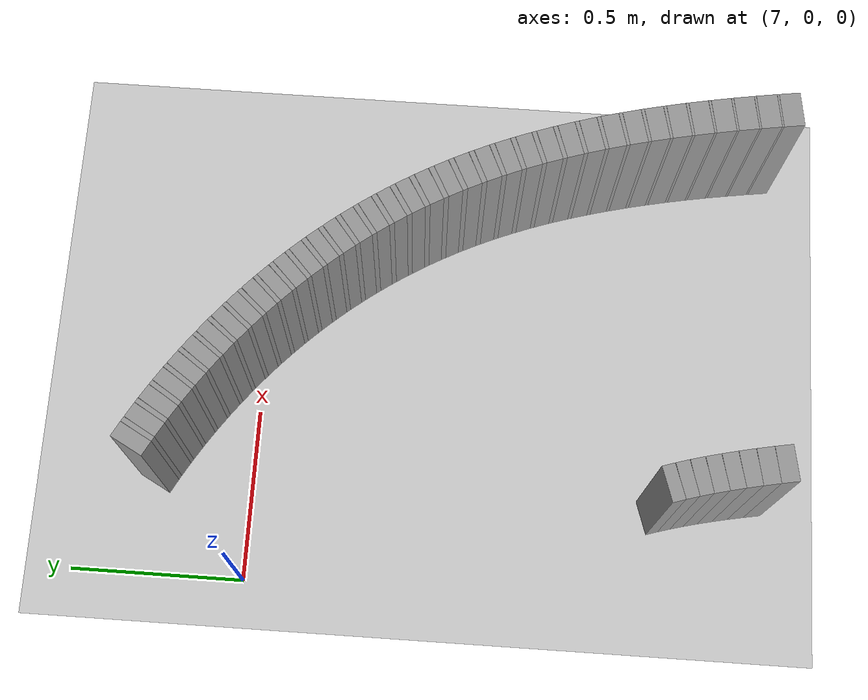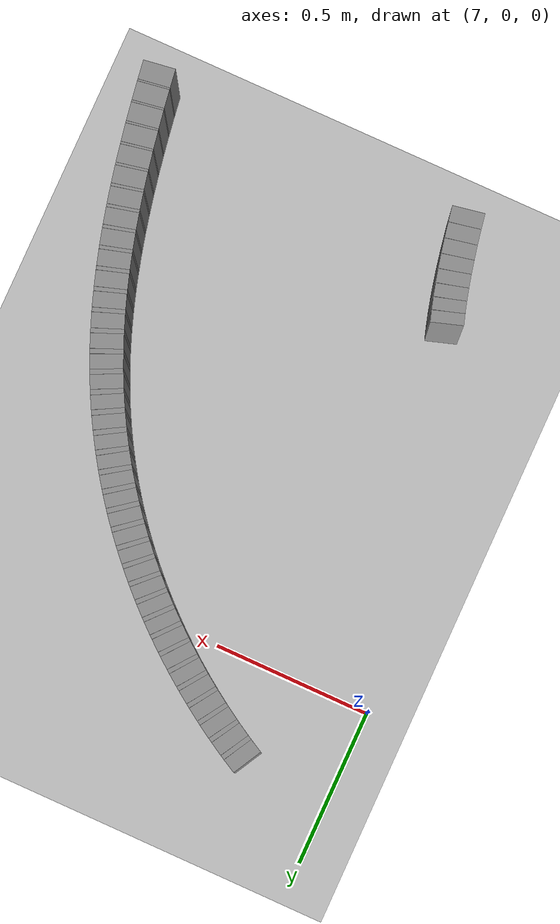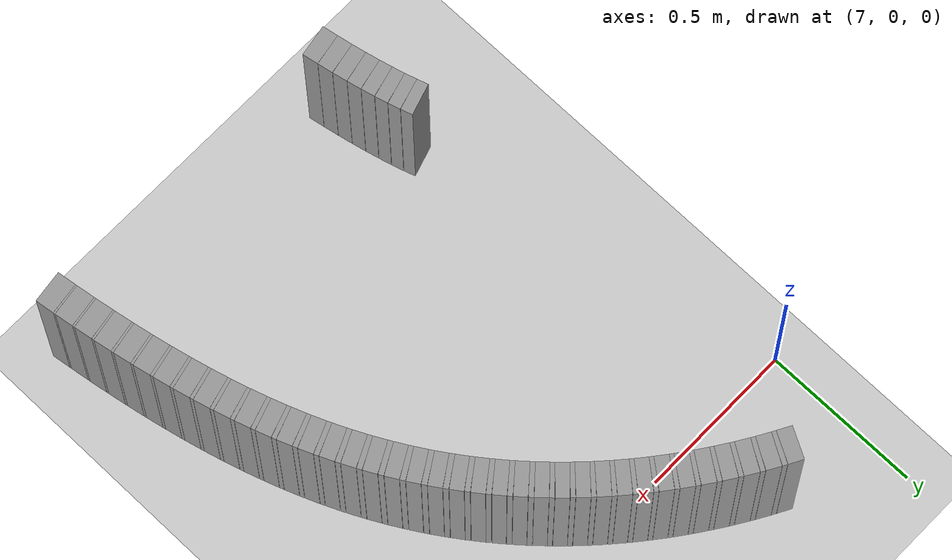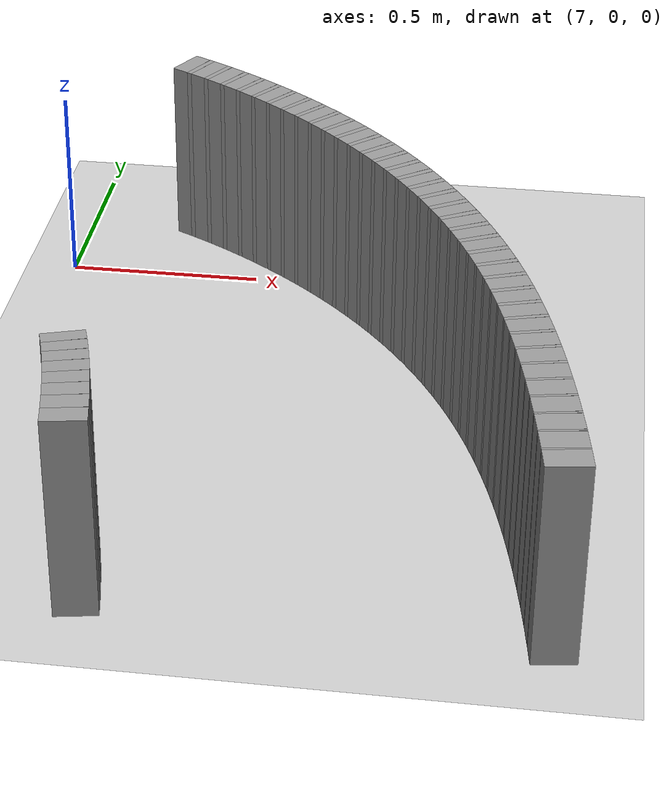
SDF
<sdf version="1.6">
 <world name="default">
  <include><uri>model://ground_plane</uri></include>
  <include><uri>model://sun</uri></include>
  <model name="wall_136_outward">
   <static>true</static>
   <link name="link">
    <collision name="collision">
     <geometry><box><size>0.0467540069470536 0.1 0.5</size></box></geometry>
    </collision>
    <visual name="visual">
     <geometry><box><size>0.0467540069470536 0.1 0.5</size></box></geometry>
     <material>
      <script><uri>file://media/materials/scripts/gazebo.material</uri><name>Gazebo/Gray</name></script>
     </material>
    </visual>
   </link>
   <pose>7.2854757726704795 0.27386344319813183 0.25 0 0 -0.4959510922210372</pose>
  </model>
  <model name="wall_137_outward">
   <static>true</static>
   <link name="link">
    <collision name="collision">
     <geometry><box><size>0.014865624654449117 0.1 0.5</size></box></geometry>
    </collision>
    <visual name="visual">
     <geometry><box><size>0.014865624654449117 0.1 0.5</size></box></geometry>
     <material>
      <script><uri>file://media/materials/scripts/gazebo.material</uri><name>Gazebo/Gray</name></script>
     </material>
    </visual>
   </link>
   <pose>7.312520211750267 0.2591052365171656 0.25 0 0 -0.5108172644477503</pose>
  </model>
  <model name="wall_138_outward">
   <static>true</static>
   <link name="link">
    <collision name="collision">
     <geometry><box><size>0.04581610491915599 0.1 0.5</size></box></geometry>
    </collision>
    <visual name="visual">
     <geometry><box><size>0.04581610491915599 0.1 0.5</size></box></geometry>
     <material>
      <script><uri>file://media/materials/scripts/gazebo.material</uri><name>Gazebo/Gray</name></script>
     </material>
    </visual>
   </link>
   <pose>7.338819224778411 0.24397604751119334 0.25 0 0 -0.5256834366744352</pose>
  </model>
  <model name="wall_139_outward">
   <static>true</static>
   <link name="link">
    <collision name="collision">
     <geometry><box><size>0.014448502004324513 0.1 0.5</size></box></geometry>
    </collision>
    <visual name="visual">
     <geometry><box><size>0.014448502004324513 0.1 0.5</size></box></geometry>
     <material>
      <script><uri>file://media/materials/scripts/gazebo.material</uri><name>Gazebo/Gray</name></script>
     </material>
    </visual>
   </link>
   <pose>7.364830070132411 0.22876562063418884 0.25 0 0 -0.5401324414356332</pose>
  </model>
  <model name="wall_140_outward">
   <static>true</static>
   <link name="link">
    <collision name="collision">
     <geometry><box><size>0.044914114259357533 0.1 0.5</size></box></geometry>
    </collision>
    <visual name="visual">
     <geometry><box><size>0.044914114259357533 0.1 0.5</size></box></geometry>
     <material>
      <script><uri>file://media/materials/scripts/gazebo.material</uri><name>Gazebo/Gray</name></script>
     </material>
    </visual>
   </link>
   <pose>7.390117095024935 0.21322494643398654 0.25 0 0 -0.554581446196835</pose>
  </model>
  <model name="wall_141_outward">
   <static>true</static>
   <link name="link">
    <collision name="collision">
     <geometry><box><size>0.014108827339631496 0.1 0.5</size></box></geometry>
    </collision>
    <visual name="visual">
     <geometry><box><size>0.014108827339631496 0.1 0.5</size></box></geometry>
     <material>
      <script><uri>file://media/materials/scripts/gazebo.material</uri><name>Gazebo/Gray</name></script>
     </material>
    </visual>
   </link>
   <pose>7.415152405815808 0.19760033170007196 0.25 0 0 -0.568690741659909</pose>
  </model>
  <model name="wall_142_outward">
   <static>true</static>
   <link name="link">
    <collision name="collision">
     <geometry><box><size>0.0440600086130381 0.1 0.5</size></box></geometry>
    </collision>
    <visual name="visual">
     <geometry><box><size>0.0440600086130381 0.1 0.5</size></box></geometry>
     <material>
      <script><uri>file://media/materials/scripts/gazebo.material</uri><name>Gazebo/Gray</name></script>
     </material>
    </visual>
   </link>
   <pose>7.439489901364403 0.18167680374957784 0.25 0 0 -0.5828000371230275</pose>
  </model>
  <model name="wall_143_outward">
   <static>true</static>
   <link name="link">
    <collision name="collision">
     <geometry><box><size>0.013868246435255359 0.1 0.5</size></box></geometry>
    </collision>
    <visual name="visual">
     <geometry><box><size>0.013868246435255359 0.1 0.5</size></box></geometry>
     <material>
      <script><uri>file://media/materials/scripts/gazebo.material</uri><name>Gazebo/Gray</name></script>
     </material>
    </visual>
   </link>
   <pose>7.463619290189252 0.1656560704038698 0.25 0 0 -0.596668728139411</pose>
  </model>
  <model name="wall_144_outward">
   <static>true</static>
   <link name="link">
    <collision name="collision">
     <geometry><box><size>0.04326820430186779 0.1 0.5</size></box></geometry>
    </collision>
    <visual name="visual">
     <geometry><box><size>0.04326820430186779 0.1 0.5</size></box></geometry>
     <material>
      <script><uri>file://media/materials/scripts/gazebo.material</uri><name>Gazebo/Gray</name></script>
     </material>
    </visual>
   </link>
   <pose>7.487080966085754 0.1493568553427717 0.25 0 0 -0.6105374191557281</pose>
  </model>
  <model name="wall_145_outward">
   <static>true</static>
   <link name="link">
    <collision name="collision">
     <geometry><box><size>0.013719889023336464 0.1 0.5</size></box></geometry>
    </collision>
    <visual name="visual">
     <geometry><box><size>0.013719889023336464 0.1 0.5</size></box></geometry>
     <material>
      <script><uri>file://media/materials/scripts/gazebo.material</uri><name>Gazebo/Gray</name></script>
     </material>
    </visual>
   </link>
   <pose>7.510372791689635 0.13294424987738956 0.25 0 0 -0.6242577386435421</pose>
  </model>
  <model name="wall_146_outward">
   <static>true</static>
   <link name="link">
    <collision name="collision">
     <geometry><box><size>0.04255286133798952 0.1 0.5</size></box></geometry>
    </collision>
    <visual name="visual">
     <geometry><box><size>0.04255286133798952 0.1 0.5</size></box></geometry>
     <material>
      <script><uri>file://media/materials/scripts/gazebo.material</uri><name>Gazebo/Gray</name></script>
     </material>
    </visual>
   </link>
   <pose>7.5330303224507595 0.11626298994576764 0.25 0 0 -0.637978058131388</pose>
  </model>
  <model name="wall_147_outward">
   <static>true</static>
   <link name="link">
    <collision name="collision">
     <geometry><box><size>0.01365169891136998 0.1 0.5</size></box></geometry>
    </collision>
    <visual name="visual">
     <geometry><box><size>0.01365169891136998 0.1 0.5</size></box></geometry>
     <material>
      <script><uri>file://media/materials/scripts/gazebo.material</uri><name>Gazebo/Gray</name></script>
     </material>
    </visual>
   </link>
   <pose>7.555548920315652 0.09945157028993032 0.25 0 0 -0.6516301811202823</pose>
  </model>
  <model name="wall_148_outward">
   <static>true</static>
   <link name="link">
    <collision name="collision">
     <geometry><box><size>0.04192528310433423 0.1 0.5</size></box></geometry>
    </collision>
    <visual name="visual">
     <geometry><box><size>0.04192528310433423 0.1 0.5</size></box></geometry>
     <material>
      <script><uri>file://media/materials/scripts/gazebo.material</uri><name>Gazebo/Gray</name></script>
     </material>
    </visual>
   </link>
   <pose>7.577468329311332 0.08237196041701697 0.25 0 0 -0.6652823041092202</pose>
  </model>
  <model name="wall_149_outward">
   <static>true</static>
   <link name="link">
    <collision name="collision">
     <geometry><box><size>0.01367077921248609 0.1 0.5</size></box></geometry>
    </collision>
    <visual name="visual">
     <geometry><box><size>0.01367077921248609 0.1 0.5</size></box></geometry>
     <material>
      <script><uri>file://media/materials/scripts/gazebo.material</uri><name>Gazebo/Gray</name></script>
     </material>
    </visual>
   </link>
   <pose>7.599280038928591 0.06513963383252402 0.25 0 0 -0.6789535091799911</pose>
  </model>
  <model name="wall_150_outward">
   <static>true</static>
   <link name="link">
    <collision name="collision">
     <geometry><box><size>0.04139399060844639 0.1 0.5</size></box></geometry>
    </collision>
    <visual name="visual">
     <geometry><box><size>0.04139399060844639 0.1 0.5</size></box></geometry>
     <material>
      <script><uri>file://media/materials/scripts/gazebo.material</uri><name>Gazebo/Gray</name></script>
     </material>
    </visual>
   </link>
   <pose>7.620527387515024 0.047630894416640784 0.25 0 0 -0.6926247142507312</pose>
  </model>
  <model name="wall_151_outward">
   <static>true</static>
   <link name="link">
    <collision name="collision">
     <geometry><box><size>0.013734392062315411 0.1 0.5</size></box></geometry>
    </collision>
    <visual name="visual">
     <geometry><box><size>0.013734392062315411 0.1 0.5</size></box></geometry>
     <material>
      <script><uri>file://media/materials/scripts/gazebo.material</uri><name>Gazebo/Gray</name></script>
     </material>
    </visual>
   </link>
   <pose>7.641679309478564 0.029957354040891643 0.25 0 0 -0.7063595381441802</pose>
  </model>
  <model name="wall_152_outward">
   <static>true</static>
   <link name="link">
    <collision name="collision">
     <geometry><box><size>0.04096478806484354 0.1 0.5</size></box></geometry>
    </collision>
    <visual name="visual">
     <geometry><box><size>0.04096478806484354 0.1 0.5</size></box></geometry>
     <material>
      <script><uri>file://media/materials/scripts/gazebo.material</uri><name>Gazebo/Gray</name></script>
     </material>
    </visual>
   </link>
   <pose>7.662300896968237 0.011992842573915391 0.25 0 0 -0.7200943620376073</pose>
  </model>
  <model name="wall_153_outward">
   <static>true</static>
   <link name="link">
    <collision name="collision">
     <geometry><box><size>0.01387041580881265 0.1 0.5</size></box></geometry>
    </collision>
    <visual name="visual">
     <geometry><box><size>0.01387041580881265 0.1 0.5</size></box></geometry>
     <material>
      <script><uri>file://media/materials/scripts/gazebo.material</uri><name>Gazebo/Gray</name></script>
     </material>
    </visual>
   </link>
   <pose>7.682847963795718 -0.006159722278659047 0.25 0 0 -0.7339652226361584</pose>
  </model>
  <model name="wall_154_outward">
   <static>true</static>
   <link name="link">
    <collision name="collision">
     <geometry><box><size>0.040638167187003485 0.1 0.5</size></box></geometry>
    </collision>
    <visual name="visual">
     <geometry><box><size>0.040638167187003485 0.1 0.5</size></box></geometry>
     <material>
      <script><uri>file://media/materials/scripts/gazebo.material</uri><name>Gazebo/Gray</name></script>
     </material>
    </visual>
   </link>
   <pose>7.7028947072459175 -0.024623128518472398 0.25 0 0 -0.7478360832347926</pose>
  </model>
  <model name="wall_155_outward">
   <static>true</static>
   <link name="link">
    <collision name="collision">
     <geometry><box><size>0.01404131822704992 0.1 0.5</size></box></geometry>
    </collision>
    <visual name="visual">
     <geometry><box><size>0.01404131822704992 0.1 0.5</size></box></geometry>
     <material>
      <script><uri>file://media/materials/scripts/gazebo.material</uri><name>Gazebo/Gray</name></script>
     </material>
    </visual>
   </link>
   <pose>7.72287162549815 -0.043287429783306686 0.25 0 0 -0.7618778628972219</pose>
  </model>
  <model name="wall_156_outward">
   <static>true</static>
   <link name="link">
    <collision name="collision">
     <geometry><box><size>0.04041303435898612 0.1 0.5</size></box></geometry>
    </collision>
    <visual name="visual">
     <geometry><box><size>0.04041303435898612 0.1 0.5</size></box></geometry>
     <material>
      <script><uri>file://media/materials/scripts/gazebo.material</uri><name>Gazebo/Gray</name></script>
     </material>
    </visual>
   </link>
   <pose>7.7423743125789315 -0.06228575483092341 0.25 0 0 -0.7759196425597209</pose>
  </model>
  <model name="wall_157_outward">
   <static>true</static>
   <link name="link">
    <collision name="collision">
     <geometry><box><size>0.014270058761801992 0.1 0.5</size></box></geometry>
    </collision>
    <visual name="visual">
     <geometry><box><size>0.014270058761801992 0.1 0.5</size></box></geometry>
     <material>
      <script><uri>file://media/materials/scripts/gazebo.material</uri><name>Gazebo/Gray</name></script>
     </material>
    </visual>
   </link>
   <pose>7.761818257689633 -0.08150719615359334 0.25 0 0 -0.7901901856788239</pose>
  </model>
  <model name="wall_158_outward">
   <static>true</static>
   <link name="link">
    <collision name="collision">
     <geometry><box><size>0.04028423897483606 0.1 0.5</size></box></geometry>
    </collision>
    <visual name="visual">
     <geometry><box><size>0.04028423897483606 0.1 0.5</size></box></geometry>
     <material>
      <script><uri>file://media/materials/scripts/gazebo.material</uri><name>Gazebo/Gray</name></script>
     </material>
    </visual>
   </link>
   <pose>7.78080780766294 -0.10108806884714275 0.25 0 0 -0.8044607287978902</pose>
  </model>
  <model name="wall_159_outward">
   <static>true</static>
   <link name="link">
    <collision name="collision">
     <geometry><box><size>0.01452166065795399 0.1 0.5</size></box></geometry>
    </collision>
    <visual name="visual">
     <geometry><box><size>0.01452166065795399 0.1 0.5</size></box></geometry>
     <material>
      <script><uri>file://media/materials/scripts/gazebo.material</uri><name>Gazebo/Gray</name></script>
     </material>
    </visual>
   </link>
   <pose>7.799735254031204 -0.12090327993117242 0.25 0 0 -0.8189828998889142</pose>
  </model>
  <model name="wall_160_outward">
   <static>true</static>
   <link name="link">
    <collision name="collision">
     <geometry><box><size>0.04024832216927859 0.1 0.5</size></box></geometry>
    </collision>
    <visual name="visual">
     <geometry><box><size>0.04024832216927859 0.1 0.5</size></box></geometry>
     <material>
      <script><uri>file://media/materials/scripts/gazebo.material</uri><name>Gazebo/Gray</name></script>
     </material>
    </visual>
   </link>
   <pose>7.818223317414826 -0.1411047267168328 0.25 0 0 -0.8335050709799694</pose>
  </model>
  <model name="wall_161_outward">
   <static>true</static>
   <link name="link">
    <collision name="collision">
     <geometry><box><size>0.014818649180876482 0.1 0.5</size></box></geometry>
    </collision>
    <visual name="visual">
     <geometry><box><size>0.014818649180876482 0.1 0.5</size></box></geometry>
     <material>
      <script><uri>file://media/materials/scripts/gazebo.material</uri><name>Gazebo/Gray</name></script>
     </material>
    </visual>
   </link>
   <pose>7.836651841864464 -0.16156076679293566 0.25 0 0 -0.8483242625581621</pose>
  </model>
  <model name="wall_162_outward">
   <static>true</static>
   <link name="link">
    <collision name="collision">
     <geometry><box><size>0.040299313394428105 0.1 0.5</size></box></geometry>
    </collision>
    <visual name="visual">
     <geometry><box><size>0.040299313394428105 0.1 0.5</size></box></geometry>
     <material>
      <script><uri>file://media/materials/scripts/gazebo.material</uri><name>Gazebo/Gray</name></script>
     </material>
    </visual>
   </link>
   <pose>7.854649517047756 -0.1824305619929812 0.25 0 0 -0.8631434541363213</pose>
  </model>
  <model name="wall_163_outward">
   <static>true</static>
   <link name="link">
    <collision name="collision">
     <geometry><box><size>0.015115771084096532 0.1 0.5</size></box></geometry>
    </collision>
    <visual name="visual">
     <geometry><box><size>0.015115771084096532 0.1 0.5</size></box></geometry>
     <material>
      <script><uri>file://media/materials/scripts/gazebo.material</uri><name>Gazebo/Gray</name></script>
     </material>
    </visual>
   </link>
   <pose>7.8725734868455035 -0.20355884648799 0.25 0 0 -0.8782598009046317</pose>
  </model>
  <model name="wall_164_outward">
   <static>true</static>
   <link name="link">
    <collision name="collision">
     <geometry><box><size>0.04043590311380016 0.1 0.5</size></box></geometry>
    </collision>
    <visual name="visual">
     <geometry><box><size>0.04043590311380016 0.1 0.5</size></box></geometry>
     <material>
      <script><uri>file://media/materials/scripts/gazebo.material</uri><name>Gazebo/Gray</name></script>
     </material>
    </visual>
   </link>
   <pose>7.890071439363004 -0.22512928617686295 0.25 0 0 -0.8933761476729558</pose>
  </model>
  <model name="wall_165_outward">
   <static>true</static>
   <link name="link">
    <collision name="collision">
     <geometry><box><size>0.015443242672860975 0.1 0.5</size></box></geometry>
    </collision>
    <visual name="visual">
     <geometry><box><size>0.015443242672860975 0.1 0.5</size></box></geometry>
     <material>
      <script><uri>file://media/materials/scripts/gazebo.material</uri><name>Gazebo/Gray</name></script>
     </material>
    </visual>
   </link>
   <pose>7.907490049345685 -0.24697361095412604 0.25 0 0 -0.9088200042645075</pose>
  </model>
  <model name="wall_166_outward">
   <static>true</static>
   <link name="link">
    <collision name="collision">
     <geometry><box><size>0.040655671652896685 0.1 0.5</size></box></geometry>
    </collision>
    <visual name="visual">
     <geometry><box><size>0.040655671652896685 0.1 0.5</size></box></geometry>
     <material>
      <script><uri>file://media/materials/scripts/gazebo.material</uri><name>Gazebo/Gray</name></script>
     </material>
    </visual>
   </link>
   <pose>7.9244822939930035 -0.26928948494214344 0.25 0 0 -0.9242638608560463</pose>
  </model>
  <model name="wall_167_outward">
   <static>true</static>
   <link name="link">
    <collision name="collision">
     <geometry><box><size>0.01572637575811439 0.1 0.5</size></box></geometry>
    </collision>
    <visual name="visual">
     <geometry><box><size>0.01572637575811439 0.1 0.5</size></box></geometry>
     <material>
      <script><uri>file://media/materials/scripts/gazebo.material</uri><name>Gazebo/Gray</name></script>
     </material>
    </visual>
   </link>
   <pose>7.941365908049213 -0.29186464517800703 0.25 0 0 -0.9399908849245953</pose>
  </model>
  <model name="wall_168_outward">
   <static>true</static>
   <link name="link">
    <collision name="collision">
     <geometry><box><size>0.04096072007134384 0.1 0.5</size></box></geometry>
    </collision>
    <visual name="visual">
     <geometry><box><size>0.04096072007134384 0.1 0.5</size></box></geometry>
     <material>
      <script><uri>file://media/materials/scripts/gazebo.material</uri><name>Gazebo/Gray</name></script>
     </material>
    </visual>
   </link>
   <pose>7.957821209963357 -0.31494147157125324 0.25 0 0 -0.9557179089932073</pose>
  </model>
  <model name="wall_169_outward">
   <static>true</static>
   <link name="link">
    <collision name="collision"><geometry><box><size>0.015974275785451 0.1 0.5</size></box></geometry></collision>
    <visual name="visual">
     <geometry><box><size>0.015974275785451 0.1 0.5</size></box></geometry>
     <material>
      <script><uri>file://media/materials/scripts/gazebo.material</uri><name>Gazebo/Gray</name></script>
     </material>
    </visual>
   </link>
   <pose>7.974142805393916 -0.3382644691583095 0.25 0 0 -0.9716928642359629</pose>
  </model>
  <model name="wall_170_outward">
   <static>true</static>
   <link name="link">
    <collision name="collision">
     <geometry><box><size>0.04135273939369824 0.1 0.5</size></box></geometry>
    </collision>
    <visual name="visual">
     <geometry><box><size>0.04135273939369824 0.1 0.5</size></box></geometry>
     <material>
      <script><uri>file://media/materials/scripts/gazebo.material</uri><name>Gazebo/Gray</name></script>
     </material>
    </visual>
   </link>
   <pose>7.99003196838823 -0.36212005598192093 0.25 0 0 -0.987667819478658</pose>
  </model>
  <model name="wall_171_outward">
   <static>true</static>
   <link name="link">
    <collision name="collision">
     <geometry><box><size>0.016134232664074155 0.1 0.5</size></box></geometry>
    </collision>
    <visual name="visual">
     <geometry><box><size>0.016134232664074155 0.1 0.5</size></box></geometry>
     <material>
      <script><uri>file://media/materials/scripts/gazebo.material</uri><name>Gazebo/Gray</name></script>
     </material>
    </visual>
   </link>
   <pose>8.005750002027845 -0.3861843030058474 0.25 0 0 -1.0038027522178357</pose>
  </model>
  <model name="wall_172_outward">
   <static>true</static>
   <link name="link">
    <collision name="collision">
     <geometry><box><size>0.04183502580660182 0.1 0.5</size></box></geometry>
    </collision>
    <visual name="visual">
     <geometry><box><size>0.04183502580660182 0.1 0.5</size></box></geometry>
     <material>
      <script><uri>file://media/materials/scripts/gazebo.material</uri><name>Gazebo/Gray</name></script>
     </material>
    </visual>
   </link>
   <pose>8.021031462838879 -0.4108123715089628 0.25 0 0 -1.0199376849568433</pose>
  </model>
  <model name="wall_173_outward">
   <static>true</static>
   <link name="link">
    <collision name="collision">
     <geometry><box><size>0.016187501410508356 0.1 0.5</size></box></geometry>
    </collision>
    <visual name="visual">
     <geometry><box><size>0.016187501410508356 0.1 0.5</size></box></geometry>
     <material>
      <script><uri>file://media/materials/scripts/gazebo.material</uri><name>Gazebo/Gray</name></script>
     </material>
    </visual>
   </link>
   <pose>8.03610431890028 -0.4355998292356795 0.25 0 0 -1.0361258933998923</pose>
  </model>
  <model name="wall_174_outward">
   <static>true</static>
   <link name="link">
    <collision name="collision">
     <geometry><box><size>0.042410857340409044 0.1 0.5</size></box></geometry>
    </collision>
    <visual name="visual">
     <geometry><box><size>0.042410857340409044 0.1 0.5</size></box></geometry>
     <material>
      <script><uri>file://media/materials/scripts/gazebo.material</uri><name>Gazebo/Gray</name></script>
     </material>
    </visual>
   </link>
   <pose>8.05073716361606 -0.4609824372807589 0.25 0 0 -1.0523141018430247</pose>
  </model>
  <model name="wall_175_outward">
   <static>true</static>
   <link name="link">
    <collision name="collision">
     <geometry><box><size>0.01610624894762808 0.1 0.5</size></box></geometry>
    </collision>
    <visual name="visual">
     <geometry><box><size>0.01610624894762808 0.1 0.5</size></box></geometry>
     <material>
      <script><uri>file://media/materials/scripts/gazebo.material</uri><name>Gazebo/Gray</name></script>
     </material>
    </visual>
   </link>
   <pose>8.065123426390432 -0.4864589769387645 0.25 0 0 -1.0684210472289746</pose>
  </model>
  <model name="wall_176_outward">
   <static>true</static>
   <link name="link">
    <collision name="collision">
     <geometry><box><size>0.04308131282937505 0.1 0.5</size></box></geometry>
    </collision>
    <visual name="visual">
     <geometry><box><size>0.04308131282937505 0.1 0.5</size></box></geometry>
     <material>
      <script><uri>file://media/materials/scripts/gazebo.material</uri><name>Gazebo/Gray</name></script>
     </material>
    </visual>
   </link>
   <pose>8.079067671779498 -0.5125607945943238 0.25 0 0 -1.0845279926149334</pose>
  </model>
  <model name="wall_177_outward">
   <static>true</static>
   <link name="link">
    <collision name="collision">
     <geometry><box><size>0.01588851768806409 0.1 0.5</size></box></geometry>
    </collision>
    <visual name="visual">
     <geometry><box><size>0.01588851768806409 0.1 0.5</size></box></geometry>
     <material>
      <script><uri>file://media/materials/scripts/gazebo.material</uri><name>Gazebo/Gray</name></script>
     </material>
    </visual>
   </link>
   <pose>8.092734798834744 -0.5386860058586714 0.25 0 0 -1.1004171788750616</pose>
  </model>
  <model name="wall_178_outward">
   <static>true</static>
   <link name="link">
    <collision name="collision">
     <geometry><box><size>0.04384757006496441 0.1 0.5</size></box></geometry>
    </collision>
    <visual name="visual">
     <geometry><box><size>0.04384757006496441 0.1 0.5</size></box></geometry>
     <material>
      <script><uri>file://media/materials/scripts/gazebo.material</uri><name>Gazebo/Gray</name></script>
     </material>
    </visual>
   </link>
   <pose>8.105959961617913 -0.5654656836703396 0.25 0 0 -1.1163063651352554</pose>
  </model>
  <model name="wall_179_outward">
   <static>true</static>
   <link name="link">
    <collision name="collision">
     <geometry><box><size>0.01552424122607545 0.1 0.5</size></box></geometry>
    </collision>
    <visual name="visual">
     <geometry><box><size>0.01552424122607545 0.1 0.5</size></box></geometry>
     <material>
      <script><uri>file://media/materials/scripts/gazebo.material</uri><name>Gazebo/Gray</name></script>
     </material>
    </visual>
   </link>
   <pose>8.118883517157297 -0.5921900862118731 0.25 0 0 -1.1318312299912625</pose>
  </model>
  <model name="wall_180_outward">
   <static>true</static>
   <link name="link">
    <collision name="collision">
     <geometry><box><size>0.04470488766064577 0.1 0.5</size></box></geometry>
    </collision>
    <visual name="visual">
     <geometry><box><size>0.04470488766064577 0.1 0.5</size></box></geometry>
     <material>
      <script><uri>file://media/materials/scripts/gazebo.material</uri><name>Gazebo/Gray</name></script>
     </material>
    </visual>
   </link>
   <pose>8.13136704386978 -0.619594588314339 0.25 0 0 -1.1473560948474109</pose>
  </model>
  <model name="wall_181_outward">
   <static>true</static>
   <link name="link">
    <collision name="collision">
     <geometry><box><size>0.015018867461456064 0.1 0.5</size></box></geometry>
    </collision>
    <visual name="visual">
     <geometry><box><size>0.015018867461456064 0.1 0.5</size></box></geometry>
     <material>
      <script><uri>file://media/materials/scripts/gazebo.material</uri><name>Gazebo/Gray</name></script>
     </material>
    </visual>
   </link>
   <pose>8.143534097320746 -0.6468646575733985 0.25 0 0 -1.1623755269914677</pose>
  </model>
  <model name="wall_182_outward">
   <static>true</static>
   <link name="link">
    <collision name="collision">
     <geometry><box><size>0.04564673326066894 0.1 0.5</size></box></geometry>
    </collision>
    <visual name="visual">
     <geometry><box><size>0.04564673326066894 0.1 0.5</size></box></geometry>
     <material>
      <script><uri>file://media/materials/scripts/gazebo.material</uri><name>Gazebo/Gray</name></script>
     </material>
    </visual>
   </link>
   <pose>8.155265478438224 -0.6748363363341066 0.25 0 0 -1.1773949591354482</pose>
  </model>
  <model name="wall_183_outward">
   <static>true</static>
   <link name="link">
    <collision name="collision">
     <geometry><box><size>0.014390386942543638 0.1 0.5</size></box></geometry>
    </collision>
    <visual name="visual">
     <geometry><box><size>0.014390386942543638 0.1 0.5</size></box></geometry>
     <material>
      <script><uri>file://media/materials/scripts/gazebo.material</uri><name>Gazebo/Gray</name></script>
     </material>
    </visual>
   </link>
   <pose>8.166676640360071 -0.7026007978902028 0.25 0 0 -1.1917858427923043</pose>
  </model>
  <model name="wall_184_outward">
   <static>true</static>
   <link name="link">
    <collision name="collision">
     <geometry><box><size>0.04666528480911439 0.1 0.5</size></box></geometry>
    </collision>
    <visual name="visual">
     <geometry><box><size>0.04666528480911439 0.1 0.5</size></box></geometry>
     <material>
      <script><uri>file://media/materials/scripts/gazebo.material</uri><name>Gazebo/Gray</name></script>
     </material>
    </visual>
   </link>
   <pose>8.177659150338753 -0.7310840994948329 0.25 0 0 -1.2061767264490983</pose>
  </model>
  <model name="wall_185_outward">
   <static>true</static>
   <link name="link">
    <collision name="collision">
     <geometry><box><size>0.013663878853547263 0.1 0.5</size></box></geometry>
    </collision>
    <visual name="visual">
     <geometry><box><size>0.013663878853547263 0.1 0.5</size></box></geometry>
     <material>
      <script><uri>file://media/materials/scripts/gazebo.material</uri><name>Gazebo/Gray</name></script>
     </material>
    </visual>
   </link>
   <pose>8.18832821577246 -0.7592983383976317 0.25 0 0 -1.2198410305162972</pose>
  </model>
  <model name="wall_186_outward">
   <static>true</static>
   <link name="link">
    <collision name="collision">
     <geometry><box><size>0.04774821323138263 0.1 0.5</size></box></geometry>
    </collision>
    <visual name="visual">
     <geometry><box><size>0.04774821323138263 0.1 0.5</size></box></geometry>
     <material>
      <script><uri>file://media/materials/scripts/gazebo.material</uri><name>Gazebo/Gray</name></script>
     </material>
    </visual>
   </link>
   <pose>8.198577707055655 -0.7882427461190437 0.25 0 0 -1.2335053345835914</pose>
  </model>
  <model name="wall_187_outward">
   <static>true</static>
   <link name="link">
    <collision name="collision">
     <geometry><box><size>0.01286663961817886 0.1 0.5</size></box></geometry>
    </collision>
    <visual name="visual">
     <geometry><box><size>0.01286663961817886 0.1 0.5</size></box></geometry>
     <material>
      <script><uri>file://media/materials/scripts/gazebo.material</uri><name>Gazebo/Gray</name></script>
     </material>
    </visual>
   </link>
   <pose>8.20852911509252 -0.8168693796388246 0.25 0 0 -1.2463723292411442</pose>
  </model>
  <model name="wall_188_outward">
   <static>true</static>
   <link name="link">
    <collision name="collision">
     <geometry><box><size>0.04888243929585351 0.1 0.5</size></box></geometry>
    </collision>
    <visual name="visual">
     <geometry><box><size>0.04888243929585351 0.1 0.5</size></box></geometry>
     <material>
      <script><uri>file://media/materials/scripts/gazebo.material</uri><name>Gazebo/Gray</name></script>
     </material>
    </visual>
   </link>
   <pose>8.218072055855087 -0.8462316587799468 0.25 0 0 -1.2592393238986928</pose>
  </model>
  <model name="wall_189_outward">
   <static>true</static>
   <link name="link">
    <collision name="collision">
     <geometry><box><size>0.01201487263682463 0.1 0.5</size></box></geometry>
    </collision>
    <visual name="visual">
     <geometry><box><size>0.01201487263682463 0.1 0.5</size></box></geometry>
     <material>
      <script><uri>file://media/materials/scripts/gazebo.material</uri><name>Gazebo/Gray</name></script>
     </material>
    </visual>
   </link>
   <pose>8.227336982249167 -0.8752361514056669 0.25 0 0 -1.271254485626429</pose>
  </model>
  <model name="wall_190_outward">
   <static>true</static>
   <link name="link">
    <collision name="collision">
     <geometry><box><size>0.0500537474603204 0.1 0.5</size></box></geometry>
    </collision>
    <visual name="visual">
     <geometry><box><size>0.0500537474603204 0.1 0.5</size></box></geometry>
     <material>
      <script><uri>file://media/materials/scripts/gazebo.material</uri><name>Gazebo/Gray</name></script>
     </material>
    </visual>
   </link>
   <pose>8.236206825058218 -0.9049755627016759 0.25 0 0 -1.283269647354234</pose>
  </model>
  <model name="wall_191_outward">
   <static>true</static>
   <link name="link">
    <collision name="collision">
     <geometry><box><size>0.011142918740861889 0.1 0.5</size></box></geometry>
    </collision>
    <visual name="visual">
     <geometry><box><size>0.011142918740861889 0.1 0.5</size></box></geometry>
     <material>
      <script><uri>file://media/materials/scripts/gazebo.material</uri><name>Gazebo/Gray</name></script>
     </material>
    </visual>
   </link>
   <pose>8.244824308581745 -0.9343350526950742 0.25 0 0 -1.2944127967007408</pose>
  </model>
  <model name="wall_192_outward">
   <static>true</static>
   <link name="link">
    <collision name="collision">
     <geometry><box><size>0.051246095607630805 0.1 0.5</size></box></geometry>
    </collision>
    <visual name="visual">
     <geometry><box><size>0.051246095607630805 0.1 0.5</size></box></geometry>
     <material>
      <script><uri>file://media/materials/scripts/gazebo.material</uri><name>Gazebo/Gray</name></script>
     </material>
    </visual>
   </link>
   <pose>8.253061496288547 -0.9644220646854653 0.25 0 0 -1.3055559460472017</pose>
  </model>
  <model name="wall_193_outward">
   <static>true</static>
   <link name="link">
    <collision name="collision">
     <geometry><box><size>0.01026910116339877 0.1 0.5</size></box></geometry>
    </collision>
    <visual name="visual">
     <geometry><box><size>0.01026910116339877 0.1 0.5</size></box></geometry>
     <material>
      <script><uri>file://media/materials/scripts/gazebo.material</uri><name>Gazebo/Gray</name></script>
     </material>
    </visual>
   </link>
   <pose>8.26107337728918 -0.994117615648962 0.25 0 0 -1.3158252277061624</pose>
  </model>
  <model name="wall_194_outward">
   <static>true</static>
   <link name="link">
    <collision name="collision">
     <geometry><box><size>0.05244141182023711 0.1 0.5</size></box></geometry>
    </collision>
    <visual name="visual">
     <geometry><box><size>0.05244141182023711 0.1 0.5</size></box></geometry>
     <material>
      <script><uri>file://media/materials/scripts/gazebo.material</uri><name>Gazebo/Gray</name></script>
     </material>
    </visual>
   </link>
   <pose>8.268720813205476 -1.0245257500163634 0.25 0 0 -1.326094509365214</pose>
  </model>
  <model name="wall_195_outward">
   <static>true</static>
   <link name="link">
    <collision name="collision">
     <geometry><box><size>0.009418371851936159 0.1 0.5</size></box></geometry>
    </collision>
    <visual name="visual">
     <geometry><box><size>0.009418371851936159 0.1 0.5</size></box></geometry>
     <material>
      <script><uri>file://media/materials/scripts/gazebo.material</uri><name>Gazebo/Gray</name></script>
     </material>
    </visual>
   </link>
   <pose>8.276171024246036 -1.0545447708361437 0.25 0 0 -1.3355130204666978</pose>
  </model>
  <model name="wall_196_outward">
   <static>true</static>
   <link name="link">
    <collision name="collision">
     <geometry><box><size>0.053622461519156464 0.1 0.5</size></box></geometry>
    </collision>
    <visual name="visual">
     <geometry><box><size>0.053622461519156464 0.1 0.5</size></box></geometry>
     <material>
      <script><uri>file://media/materials/scripts/gazebo.material</uri><name>Gazebo/Gray</name></script>
     </material>
    </visual>
   </link>
   <pose>8.28327317829908 -1.0852544578369274 0.25 0 0 -1.344931531568081</pose>
  </model>
  <model name="wall_197_outward">
   <static>true</static>
   <link name="link">
    <collision name="collision">
     <geometry><box><size>0.008610645681865873 0.1 0.5</size></box></geometry>
    </collision>
    <visual name="visual">
     <geometry><box><size>0.008610645681865873 0.1 0.5</size></box></geometry>
     <material>
      <script><uri>file://media/materials/scripts/gazebo.material</uri><name>Gazebo/Gray</name></script>
     </material>
    </visual>
   </link>
   <pose>8.29020554218162 -1.1155888225144452 0.25 0 0 -1.353542283656881</pose>
  </model>
  <model name="wall_198_outward">
   <static>true</static>
   <link name="link">
    <collision name="collision">
     <geometry><box><size>0.05476944545089743 0.1 0.5</size></box></geometry>
    </collision>
    <visual name="visual">
     <geometry><box><size>0.05476944545089743 0.1 0.5</size></box></geometry>
     <material>
      <script><uri>file://media/materials/scripts/gazebo.material</uri><name>Gazebo/Gray</name></script>
     </material>
    </visual>
   </link>
   <pose>8.296805824784974 -1.1465837659069136 0.25 0 0 -1.3621530357458929</pose>
  </model>
  <model name="wall_199_outward">
   <static>true</static>
   <link name="link">
    <collision name="collision">
     <geometry><box><size>0.007869721865679838 0.1 0.5</size></box></geometry>
    </collision>
    <visual name="visual">
     <geometry><box><size>0.007869721865679838 0.1 0.5</size></box></geometry>
     <material>
      <script><uri>file://media/materials/scripts/gazebo.material</uri><name>Gazebo/Gray</name></script>
     </material>
    </visual>
   </link>
   <pose>8.303262818073067 -1.1772304114747256 0.25 0 0 -1.3700228388458475</pose>
  </model>
  <model name="wall_200_outward">
   <static>true</static>
   <link name="link">
    <collision name="collision">
     <geometry><box><size>0.05586125573092584 0.1 0.5</size></box></geometry>
    </collision>
    <visual name="visual">
     <geometry><box><size>0.05586125573092584 0.1 0.5</size></box></geometry>
     <material>
      <script><uri>file://media/materials/scripts/gazebo.material</uri><name>Gazebo/Gray</name></script>
     </material>
    </visual>
   </link>
   <pose>8.30940210434433 -1.20849879380817 0.25 0 0 -1.3778926419456734</pose>
  </model>
  <model name="wall_201_outward">
   <static>true</static>
   <link name="link">
    <collision name="collision">
     <geometry><box><size>0.007193491511730756 0.1 0.5</size></box></geometry>
    </collision>
    <visual name="visual">
     <geometry><box><size>0.007193491511730756 0.1 0.5</size></box></geometry>
     <material>
      <script><uri>file://media/materials/scripts/gazebo.material</uri><name>Gazebo/Gray</name></script>
     </material>
    </visual>
   </link>
   <pose>8.315420791087533 -1.2394462573371274 0.25 0 0 -1.3850861954985458</pose>
  </model>
  <model name="wall_202_outward">
   <static>true</static>
   <link name="link">
    <collision name="collision">
     <geometry><box><size>0.056875787514864704 0.1 0.5</size></box></geometry>
    </collision>
    <visual name="visual">
     <geometry><box><size>0.056875787514864704 0.1 0.5</size></box></geometry>
     <material>
      <script><uri>file://media/materials/scripts/gazebo.material</uri><name>Gazebo/Gray</name></script>
     </material>
    </visual>
   </link>
   <pose>8.321134624970288 -1.270967122462068 0.25 0 0 -1.3922797490509298</pose>
  </model>
  <model name="wall_203_outward">
   <static>true</static>
   <link name="link">
    <collision name="collision">
     <geometry><box><size>0.006601981161588994 0.1 0.5</size></box></geometry>
    </collision>
    <visual name="visual">
     <geometry><box><size>0.006601981161588994 0.1 0.5</size></box></geometry>
     <material>
      <script><uri>file://media/materials/scripts/gazebo.material</uri><name>Gazebo/Gray</name></script>
     </material>
    </visual>
   </link>
   <pose>8.326749036645552 -1.3022054173732613 0.25 0 0 -1.3988817781726997</pose>
  </model>
  <model name="wall_204_outward">
   <static>true</static>
   <link name="link">
    <collision name="collision">
     <geometry><box><size>0.05778972240103698 0.1 0.5</size></box></geometry>
    </collision>
    <visual name="visual">
     <geometry><box><size>0.05778972240103698 0.1 0.5</size></box></geometry>
     <material>
      <script><uri>file://media/materials/scripts/gazebo.material</uri><name>Gazebo/Gray</name></script>
     </material>
    </visual>
   </link>
   <pose>8.332068689399394 -1.3339586850655394 0.25 0 0 -1.4054838072943299</pose>
  </model>
  <model name="wall_205_outward">
   <static>true</static>
   <link name="link">
    <collision name="collision">
     <geometry><box><size>0.006121036705346209 0.1 0.5</size></box></geometry>
    </collision>
    <visual name="visual">
     <geometry><box><size>0.006121036705346209 0.1 0.5</size></box></geometry>
     <material>
      <script><uri>file://media/materials/scripts/gazebo.material</uri><name>Gazebo/Gray</name></script>
     </material>
    </visual>
   </link>
   <pose>8.33730879818059 -1.3654814423843724 0.25 0 0 -1.4116048822230576</pose>
  </model>
  <model name="wall_206_outward">
   <static>true</static>
   <link name="link">
    <collision name="collision">
     <geometry><box><size>0.058579438333369364 0.1 0.5</size></box></geometry>
    </collision>
    <visual name="visual">
     <geometry><box><size>0.058579438333369364 0.1 0.5</size></box></geometry>
     <material>
      <script><uri>file://media/materials/scripts/gazebo.material</uri><name>Gazebo/Gray</name></script>
     </material>
    </visual>
   </link>
   <pose>8.342259851931878 -1.397450514558346 0.25 0 0 -1.4177259571521228</pose>
  </model>
  <model name="wall_207_outward">
   <static>true</static>
   <link name="link">
    <collision name="collision">
     <geometry><box><size>0.005734164726763665 0.1 0.5</size></box></geometry>
    </collision>
    <visual name="visual">
     <geometry><box><size>0.005734164726763665 0.1 0.5</size></box></geometry>
     <material>
      <script><uri>file://media/materials/scripts/gazebo.material</uri><name>Gazebo/Gray</name></script>
     </material>
    </visual>
   </link>
   <pose>8.34714665081111 -1.4292337856321207 0.25 0 0 -1.4234601533033415</pose>
  </model>
  <model name="wall_208_outward">
   <static>true</static>
   <link name="link">
    <collision name="collision">
     <geometry><box><size>0.059221685999782114 0.1 0.5</size></box></geometry>
    </collision>
    <visual name="visual">
     <geometry><box><size>0.059221685999782114 0.1 0.5</size></box></geometry>
     <material>
      <script><uri>file://media/materials/scripts/gazebo.material</uri><name>Gazebo/Gray</name></script>
     </material>
    </visual>
   </link>
   <pose>8.351746504807647 -1.4613842784375324 0.25 0 0 -1.4291943494542587</pose>
  </model>
  <model name="wall_137_inward">
   <static>true</static>
   <link name="link">
    <collision name="collision">
     <geometry><box><size>0.03644071692770717 0.1 0.5</size></box></geometry>
    </collision>
    <visual name="visual">
     <geometry><box><size>0.03644071692770717 0.1 0.5</size></box></geometry>
     <material>
      <script><uri>file://media/materials/scripts/gazebo.material</uri><name>Gazebo/Gray</name></script>
     </material>
    </visual>
   </link>
   <pose>7.266279907858604 -1.1529754482484524 0.25 0 0 -1.259239323898701</pose>
  </model>
  <model name="wall_138_inward">
   <static>true</static>
   <link name="link">
    <collision name="collision">
     <geometry><box><size>0.038474072194911245 0.1 0.5</size></box></geometry>
    </collision>
    <visual name="visual">
     <geometry><box><size>0.038474072194911245 0.1 0.5</size></box></geometry>
     <material>
      <script><uri>file://media/materials/scripts/gazebo.material</uri><name>Gazebo/Gray</name></script>
     </material>
    </visual>
   </link>
   <pose>7.277320459583947 -1.1887659530351893 0.25 0 0 -1.2832696473542156</pose>
  </model>
  <model name="wall_139_inward">
   <static>true</static>
   <link name="link">
    <collision name="collision">
     <geometry><box><size>0.04053946898222141 0.1 0.5</size></box></geometry>
    </collision>
    <visual name="visual">
     <geometry><box><size>0.04053946898222141 0.1 0.5</size></box></geometry>
     <material>
      <script><uri>file://media/materials/scripts/gazebo.material</uri><name>Gazebo/Gray</name></script>
     </material>
    </visual>
   </link>
   <pose>7.288089256995791 -1.2267741661313436 0.25 0 0 -1.305555946047192</pose>
  </model>
  <model name="wall_140_inward">
   <static>true</static>
   <link name="link">
    <collision name="collision">
     <geometry><box><size>0.042597195680765386 0.1 0.5</size></box></geometry>
    </collision>
    <visual name="visual">
     <geometry><box><size>0.042597195680765386 0.1 0.5</size></box></geometry>
     <material>
      <script><uri>file://media/materials/scripts/gazebo.material</uri><name>Gazebo/Gray</name></script>
     </material>
    </visual>
   </link>
   <pose>7.2985627387063445 -1.2669991624373336 0.25 0 0 -1.3260945093652399</pose>
  </model>
  <model name="wall_141_inward">
   <static>true</static>
   <link name="link">
    <collision name="collision">
     <geometry><box><size>0.04460758425832385 0.1 0.5</size></box></geometry>
    </collision>
    <visual name="visual">
     <geometry><box><size>0.04460758425832385 0.1 0.5</size></box></geometry>
     <material>
      <script><uri>file://media/materials/scripts/gazebo.material</uri><name>Gazebo/Gray</name></script>
     </material>
    </visual>
   </link>
   <pose>7.308717604972353 -1.309400560377458 0.25 0 0 -1.3449315315680335</pose>
  </model>
  <model name="wall_142_inward">
   <static>true</static>
   <link name="link">
    <collision name="collision">
     <geometry><box><size>0.04652898020948353 0.1 0.5</size></box></geometry>
    </collision>
    <visual name="visual">
     <geometry><box><size>0.04652898020948353 0.1 0.5</size></box></geometry>
     <material>
      <script><uri>file://media/materials/scripts/gazebo.material</uri><name>Gazebo/Gray</name></script>
     </material>
    </visual>
   </link>
   <pose>7.318531362164018 -1.3538978033023188 0.25 0 0 -1.3621530357458989</pose>
  </model>
  <model name="wall_143_inward">
   <static>true</static>
   <link name="link">
    <collision name="collision">
     <geometry><box><size>0.04832943412580337 0.1 0.5</size></box></geometry>
    </collision>
    <visual name="visual">
     <geometry><box><size>0.04832943412580337 0.1 0.5</size></box></geometry>
     <material>
      <script><uri>file://media/materials/scripts/gazebo.material</uri><name>Gazebo/Gray</name></script>
     </material>
    </visual>
   </link>
   <pose>7.327982807703584 -1.4003742554141871 0.25 0 0 -1.3778926419456912</pose>
  </model>
  <model name="wall_144_inward">
   <static>true</static>
   <link name="link">
    <collision name="collision">
     <geometry><box><size>0.049977886174356397 0.1 0.5</size></box></geometry>
    </collision>
    <visual name="visual">
     <geometry><box><size>0.049977886174356397 0.1 0.5</size></box></geometry>
     <material>
      <script><uri>file://media/materials/scripts/gazebo.material</uri><name>Gazebo/Gray</name></script>
     </material>
    </visual>
   </link>
   <pose>7.337052698807019 -1.4486825817493716 0.25 0 0 -1.3922797490509373</pose>
  </model>
 </world>
</sdf>
